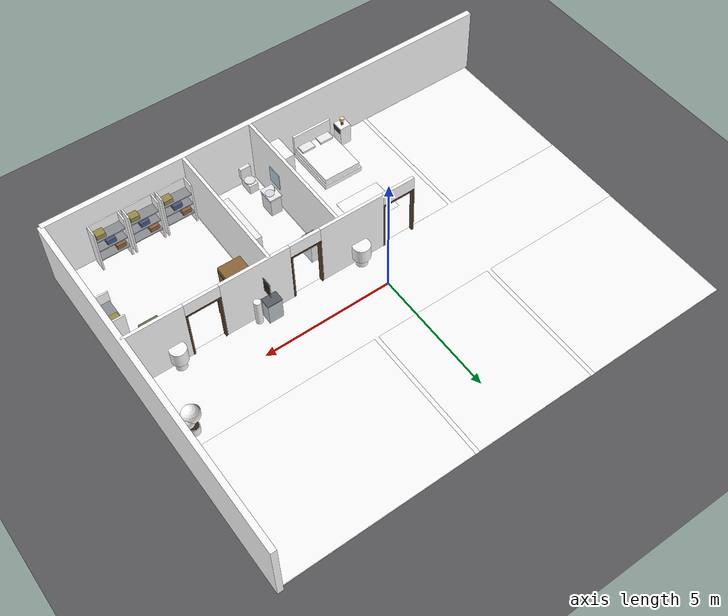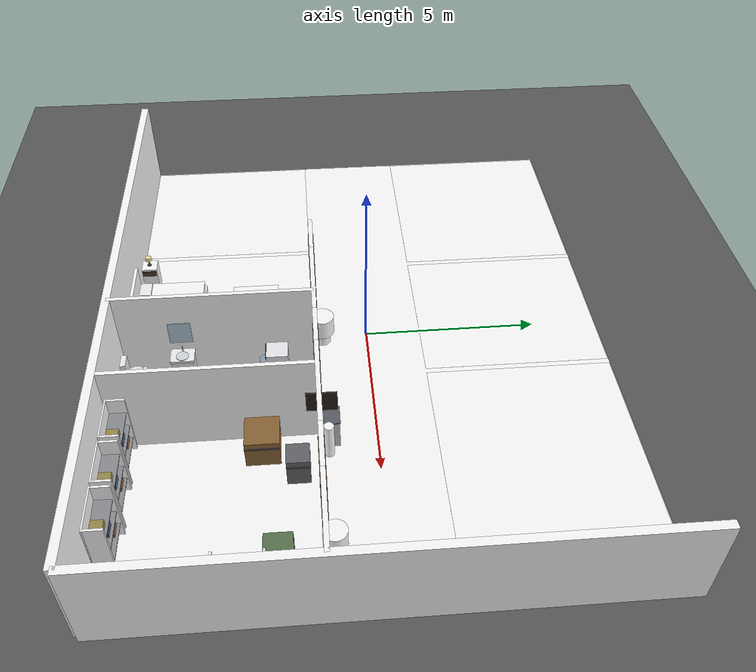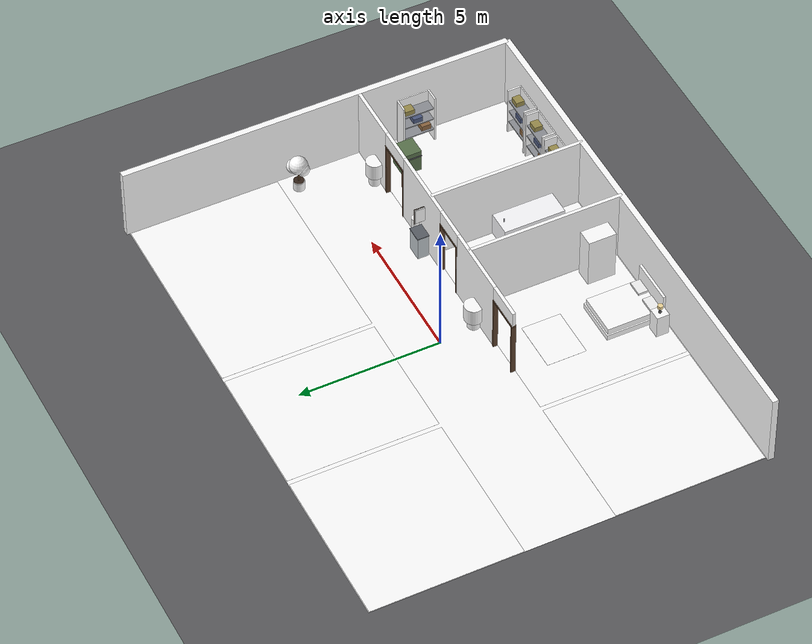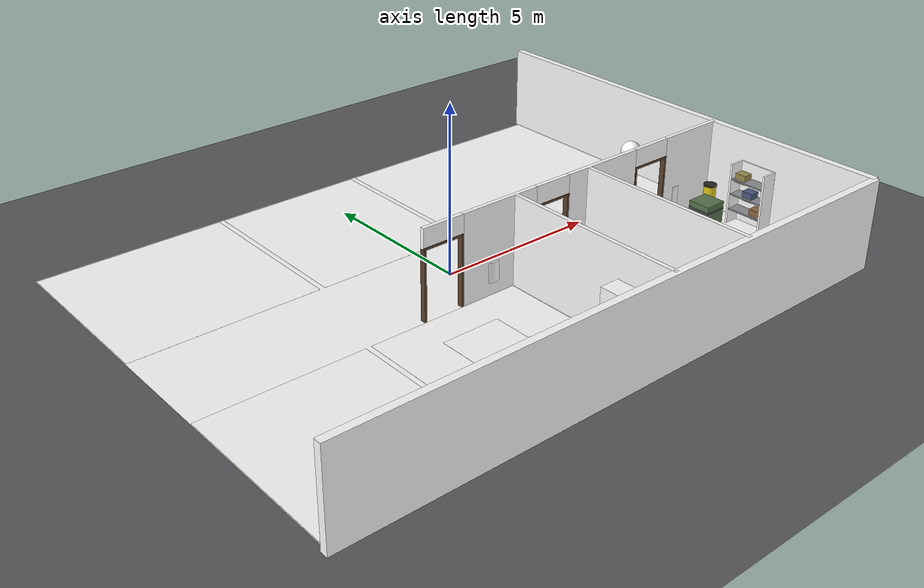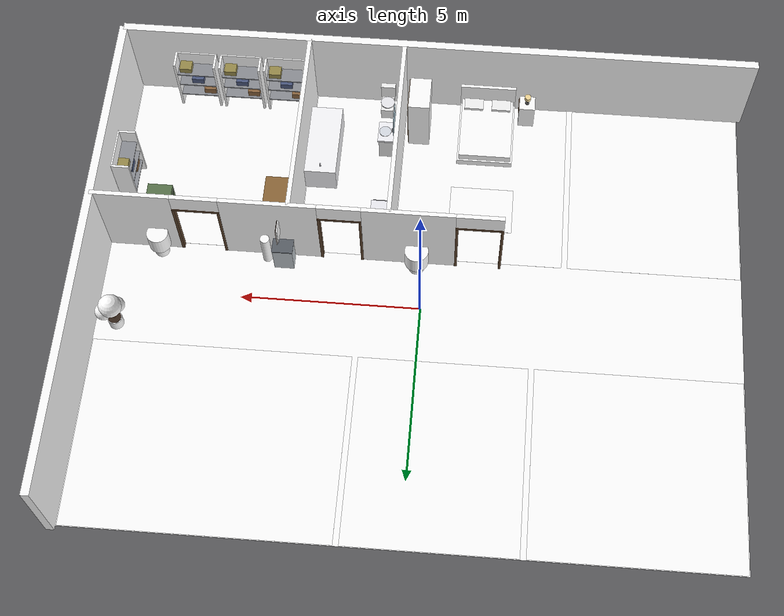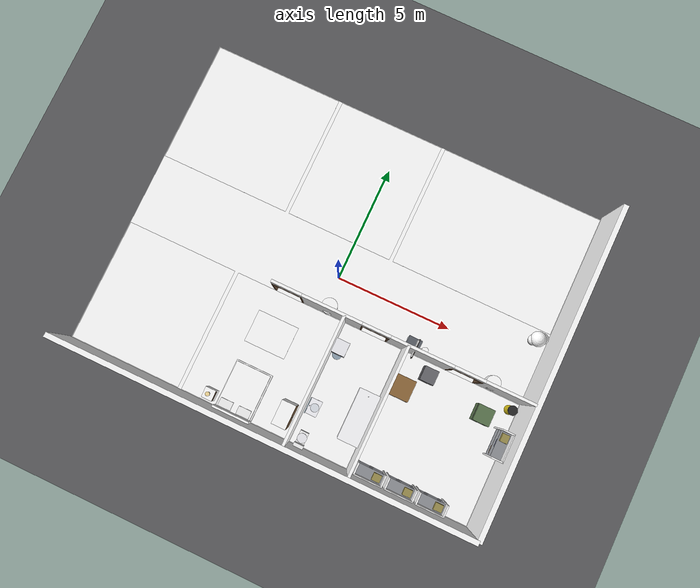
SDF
<sdf version="1.9">
 <world name="dan_house">
  <model name="ground_plane">
   <static>true</static>
   <link name="link">
    <collision name="c"><geometry><plane><normal>0 0 1</normal><size>90 90</size></plane></geometry></collision>
    <visual name="v">
     <geometry><plane><normal>0 0 1</normal><size>90 90</size></plane></geometry>
     <material><diffuse>0.35 0.35 0.36 1</diffuse></material>
    </visual>
   </link>
  </model>
  <model name="floor_main">
   <static>true</static>
   <link name="link">
    <collision name="c">
     <pose>0 0 0.006 0 0 0</pose>
     <geometry><box><size>17.780 13.780 0.012</size></box></geometry>
    </collision>
    <visual name="v">
     <pose>0 0 0.006 0 0 0</pose>
     <geometry><box><size>17.780 13.780 0.012</size></box></geometry>
     <material>
      <diffuse>1 1 1 1</diffuse>
      <pbr>
       <metal>
        <albedo_map>textures/wood_floor.jpg</albedo_map>
        <metalness>0.0</metalness>
        <roughness>0.85</roughness>
       </metal>
      </pbr>
     </material>
    </visual>
   </link>
  </model>
  <model name="floor_tex_living">
   <static>true</static>
   <link name="link">
    <visual name="v">
     <pose>-6.045 4.225 0.0125 0 0 0</pose>
     <geometry><box><size>5.650 5.290 0.001</size></box></geometry>
     <material>
      <diffuse>1 1 1 1</diffuse>
      <pbr>
       <metal>
        <albedo_map>textures/wood_floor.jpg</albedo_map>
        <metalness>0.0</metalness>
        <roughness>0.85</roughness>
       </metal>
      </pbr>
     </material>
    </visual>
   </link>
  </model>
  <model name="floor_tex_kitchen">
   <static>true</static>
   <link name="link">
    <visual name="v">
     <pose>-0.74 4.225 0.0125 0 0 0</pose>
     <geometry><box><size>4.640 5.290 0.001</size></box></geometry>
     <material>
      <diffuse>1 1 1 1</diffuse>
      <pbr>
       <metal><albedo_map>textures/tile.jpg</albedo_map><metalness>0.0</metalness><roughness>0.85</roughness></metal>
      </pbr>
     </material>
    </visual>
   </link>
  </model>
  <model name="floor_tex_study">
   <static>true</static>
   <link name="link">
    <visual name="v">
     <pose>5.305000000000001 4.225 0.0125 0 0 0</pose>
     <geometry><box><size>7.130 5.290 0.001</size></box></geometry>
     <material>
      <diffuse>1 1 1 1</diffuse>
      <pbr>
       <metal>
        <albedo_map>textures/wood_dark.jpg</albedo_map>
        <metalness>0.0</metalness>
        <roughness>0.85</roughness>
       </metal>
      </pbr>
     </material>
    </visual>
   </link>
  </model>
  <model name="floor_tex_bed1">
   <static>true</static>
   <link name="link">
    <visual name="v">
     <pose>-6.445 -4.225 0.0125 0 0 0</pose>
     <geometry><box><size>4.850 5.290 0.001</size></box></geometry>
     <material>
      <diffuse>1 1 1 1</diffuse>
      <pbr>
       <metal>
        <albedo_map>textures/carpet.jpg</albedo_map>
        <metalness>0.0</metalness>
        <roughness>0.85</roughness>
       </metal>
      </pbr>
     </material>
    </visual>
   </link>
  </model>
  <model name="floor_tex_bed2">
   <static>true</static>
   <link name="link">
    <visual name="v">
     <pose>-1.49 -4.225 0.0125 0 0 0</pose>
     <geometry><box><size>4.740 5.290 0.001</size></box></geometry>
     <material>
      <diffuse>1 1 1 1</diffuse>
      <pbr>
       <metal>
        <albedo_map>textures/carpet.jpg</albedo_map>
        <metalness>0.0</metalness>
        <roughness>0.85</roughness>
       </metal>
      </pbr>
     </material>
    </visual>
   </link>
  </model>
  <model name="floor_tex_bath">
   <static>true</static>
   <link name="link">
    <visual name="v">
     <pose>2.31 -4.225 0.0125 0 0 0</pose>
     <geometry><box><size>2.540 5.290 0.001</size></box></geometry>
     <material>
      <diffuse>1 1 1 1</diffuse>
      <pbr>
       <metal><albedo_map>textures/tile.jpg</albedo_map><metalness>0.0</metalness><roughness>0.85</roughness></metal>
      </pbr>
     </material>
    </visual>
   </link>
  </model>
  <model name="floor_tex_store">
   <static>true</static>
   <link name="link">
    <visual name="v">
     <pose>6.305000000000001 -4.225 0.0125 0 0 0</pose>
     <geometry><box><size>5.130 5.290 0.001</size></box></geometry>
     <material>
      <diffuse>1 1 1 1</diffuse>
      <pbr>
       <metal>
        <albedo_map>textures/wood_dark.jpg</albedo_map>
        <metalness>0.0</metalness>
        <roughness>0.85</roughness>
       </metal>
      </pbr>
     </material>
    </visual>
   </link>
  </model>
  <model name="wall_south_0">
   <pose>0.000 -7.0 1.35 0 0 0</pose>
   <static>true</static>
   <link name="link">
    <collision name="c"><geometry><box><size>18.000 0.22 2.7</size></box></geometry></collision>
    <visual name="v">
     <geometry><box><size>18.000 0.22 2.7</size></box></geometry>
     <material>
      <diffuse>1 1 1 1</diffuse>
      <pbr>
       <metal>
        <albedo_map>textures/wallpaper.jpg</albedo_map>
        <metalness>0.0</metalness>
        <roughness>0.85</roughness>
       </metal>
      </pbr>
     </material>
    </visual>
   </link>
  </model>
  <model name="wall_east_0">
   <pose>9.0 0.000 1.35 0 0 0</pose>
   <static>true</static>
   <link name="link">
    <collision name="c"><geometry><box><size>0.22 14.000 2.7</size></box></geometry></collision>
    <visual name="v">
     <geometry><box><size>0.22 14.000 2.7</size></box></geometry>
     <material>
      <diffuse>1 1 1 1</diffuse>
      <pbr>
       <metal>
        <albedo_map>textures/wallpaper.jpg</albedo_map>
        <metalness>0.0</metalness>
        <roughness>0.85</roughness>
       </metal>
      </pbr>
     </material>
    </visual>
   </link>
  </model>
  <model name="wall_corr_south_2">
   <pose>0.425 -1.5 1.35 0 0 0</pose>
   <static>true</static>
   <link name="link">
    <collision name="c"><geometry><box><size>2.550 0.12 2.7</size></box></geometry></collision>
    <visual name="v">
     <geometry><box><size>2.550 0.12 2.7</size></box></geometry>
     <material>
      <diffuse>1 1 1 1</diffuse>
      <pbr>
       <metal>
        <albedo_map>textures/wallpaper.jpg</albedo_map>
        <metalness>0.0</metalness>
        <roughness>0.85</roughness>
       </metal>
      </pbr>
     </material>
    </visual>
   </link>
  </model>
  <model name="wall_corr_south_3">
   <pose>4.225 -1.5 1.35 0 0 0</pose>
   <static>true</static>
   <link name="link">
    <collision name="c"><geometry><box><size>2.650 0.12 2.7</size></box></geometry></collision>
    <visual name="v">
     <geometry><box><size>2.650 0.12 2.7</size></box></geometry>
     <material>
      <diffuse>1 1 1 1</diffuse>
      <pbr>
       <metal>
        <albedo_map>textures/wallpaper.jpg</albedo_map>
        <metalness>0.0</metalness>
        <roughness>0.85</roughness>
       </metal>
      </pbr>
     </material>
    </visual>
   </link>
  </model>
  <model name="wall_corr_south_4">
   <pose>7.925 -1.5 1.35 0 0 0</pose>
   <static>true</static>
   <link name="link">
    <collision name="c"><geometry><box><size>2.150 0.12 2.7</size></box></geometry></collision>
    <visual name="v">
     <geometry><box><size>2.150 0.12 2.7</size></box></geometry>
     <material>
      <diffuse>1 1 1 1</diffuse>
      <pbr>
       <metal>
        <albedo_map>textures/wallpaper.jpg</albedo_map>
        <metalness>0.0</metalness>
        <roughness>0.85</roughness>
       </metal>
      </pbr>
     </material>
    </visual>
   </link>
  </model>
  <model name="wall_corr_south_door_-1.5_p0">
   <pose>-2.115 -1.5 1.075 0 0 0</pose>
   <static>true</static>
   <link name="link">
    <visual name="v">
     <geometry><box><size>0.07 0.160 2.15</size></box></geometry>
     <material><diffuse>0.36 0.26 0.18 1</diffuse></material>
    </visual>
   </link>
  </model>
  <model name="wall_corr_south_door_-1.5_p1">
   <pose>-0.885 -1.5 1.075 0 0 0</pose>
   <static>true</static>
   <link name="link">
    <visual name="v">
     <geometry><box><size>0.07 0.160 2.15</size></box></geometry>
     <material><diffuse>0.36 0.26 0.18 1</diffuse></material>
    </visual>
   </link>
  </model>
  <model name="wall_corr_south_door_-1.5_top">
   <pose>-1.5 -1.5 2.1149999999999998 0 0 0</pose>
   <static>true</static>
   <link name="link">
    <visual name="v">
     <geometry><box><size>1.3 0.160 0.07</size></box></geometry>
     <material><diffuse>0.36 0.26 0.18 1</diffuse></material>
    </visual>
   </link>
  </model>
  <model name="wall_corr_south_door_-1.5_lintel">
   <pose>-1.5 -1.5 2.4000000000000004 0 0 0</pose>
   <static>true</static>
   <link name="link">
    <visual name="v">
     <geometry><box><size>1.3 0.12 0.600</size></box></geometry>
     <material>
      <diffuse>1 1 1 1</diffuse>
      <pbr>
       <metal>
        <albedo_map>textures/wallpaper.jpg</albedo_map>
        <metalness>0.0</metalness>
        <roughness>0.85</roughness>
       </metal>
      </pbr>
     </material>
    </visual>
   </link>
  </model>
  <model name="wall_corr_south_door_2.3_p0">
   <pose>1.7349999999999999 -1.5 1.075 0 0 0</pose>
   <static>true</static>
   <link name="link">
    <visual name="v">
     <geometry><box><size>0.07 0.160 2.15</size></box></geometry>
     <material><diffuse>0.36 0.26 0.18 1</diffuse></material>
    </visual>
   </link>
  </model>
  <model name="wall_corr_south_door_2.3_p1">
   <pose>2.8649999999999998 -1.5 1.075 0 0 0</pose>
   <static>true</static>
   <link name="link">
    <visual name="v">
     <geometry><box><size>0.07 0.160 2.15</size></box></geometry>
     <material><diffuse>0.36 0.26 0.18 1</diffuse></material>
    </visual>
   </link>
  </model>
  <model name="wall_corr_south_door_2.3_top">
   <pose>2.3 -1.5 2.1149999999999998 0 0 0</pose>
   <static>true</static>
   <link name="link">
    <visual name="v">
     <geometry><box><size>1.2 0.160 0.07</size></box></geometry>
     <material><diffuse>0.36 0.26 0.18 1</diffuse></material>
    </visual>
   </link>
  </model>
  <model name="wall_corr_south_door_2.3_lintel">
   <pose>2.3 -1.5 2.4000000000000004 0 0 0</pose>
   <static>true</static>
   <link name="link">
    <visual name="v">
     <geometry><box><size>1.2 0.12 0.600</size></box></geometry>
     <material>
      <diffuse>1 1 1 1</diffuse>
      <pbr>
       <metal>
        <albedo_map>textures/wallpaper.jpg</albedo_map>
        <metalness>0.0</metalness>
        <roughness>0.85</roughness>
       </metal>
      </pbr>
     </material>
    </visual>
   </link>
  </model>
  <model name="wall_corr_south_door_6.2_p0">
   <pose>5.585 -1.5 1.075 0 0 0</pose>
   <static>true</static>
   <link name="link">
    <visual name="v">
     <geometry><box><size>0.07 0.160 2.15</size></box></geometry>
     <material><diffuse>0.36 0.26 0.18 1</diffuse></material>
    </visual>
   </link>
  </model>
  <model name="wall_corr_south_door_6.2_p1">
   <pose>6.815 -1.5 1.075 0 0 0</pose>
   <static>true</static>
   <link name="link">
    <visual name="v">
     <geometry><box><size>0.07 0.160 2.15</size></box></geometry>
     <material><diffuse>0.36 0.26 0.18 1</diffuse></material>
    </visual>
   </link>
  </model>
  <model name="wall_corr_south_door_6.2_top">
   <pose>6.2 -1.5 2.1149999999999998 0 0 0</pose>
   <static>true</static>
   <link name="link">
    <visual name="v">
     <geometry><box><size>1.3 0.160 0.07</size></box></geometry>
     <material><diffuse>0.36 0.26 0.18 1</diffuse></material>
    </visual>
   </link>
  </model>
  <model name="wall_corr_south_door_6.2_lintel">
   <pose>6.2 -1.5 2.4000000000000004 0 0 0</pose>
   <static>true</static>
   <link name="link">
    <visual name="v">
     <geometry><box><size>1.3 0.12 0.600</size></box></geometry>
     <material>
      <diffuse>1 1 1 1</diffuse>
      <pbr>
       <metal>
        <albedo_map>textures/wallpaper.jpg</albedo_map>
        <metalness>0.0</metalness>
        <roughness>0.85</roughness>
       </metal>
      </pbr>
     </material>
    </visual>
   </link>
  </model>
  <model name="wall_bed2_bath_0">
   <pose>0.96 -4.250 1.35 0 0 0</pose>
   <static>true</static>
   <link name="link">
    <collision name="c"><geometry><box><size>0.12 5.500 2.7</size></box></geometry></collision>
    <visual name="v">
     <geometry><box><size>0.12 5.500 2.7</size></box></geometry>
     <material>
      <diffuse>1 1 1 1</diffuse>
      <pbr>
       <metal>
        <albedo_map>textures/wallpaper.jpg</albedo_map>
        <metalness>0.0</metalness>
        <roughness>0.85</roughness>
       </metal>
      </pbr>
     </material>
    </visual>
   </link>
  </model>
  <model name="wall_bath_store_0">
   <pose>3.66 -4.250 1.35 0 0 0</pose>
   <static>true</static>
   <link name="link">
    <collision name="c"><geometry><box><size>0.12 5.500 2.7</size></box></geometry></collision>
    <visual name="v">
     <geometry><box><size>0.12 5.500 2.7</size></box></geometry>
     <material>
      <diffuse>1 1 1 1</diffuse>
      <pbr>
       <metal>
        <albedo_map>textures/wallpaper.jpg</albedo_map>
        <metalness>0.0</metalness>
        <roughness>0.85</roughness>
       </metal>
      </pbr>
     </material>
    </visual>
   </link>
  </model>
  <model name="window_s3">
   <pose>-2.0 -6.95 1.6 0 0 0</pose>
   <static>true</static>
   <link name="link">
    <visual name="pane">
     <geometry><box><size>1.62 0.06 1.2</size></box></geometry>
     <material><diffuse>0.55 0.72 0.9 1</diffuse><emissive>0.14 0.2 0.3</emissive></material>
    </visual>
    <visual name="ft">
     <pose>0 0 0.65 0 0 0</pose>
     <geometry><box><size>1.80 0.1 0.08</size></box></geometry>
     <material><diffuse>0.95 0.95 0.95 1</diffuse></material>
    </visual>
    <visual name="fb">
     <pose>0 0 -0.65 0 0 0</pose>
     <geometry><box><size>1.80 0.1 0.08</size></box></geometry>
     <material><diffuse>0.95 0.95 0.95 1</diffuse></material>
    </visual>
    <visual name="fl">
     <pose>-0.90 0 0 0 0 0</pose>
     <geometry><box><size>0.1 0.1 1.2</size></box></geometry>
     <material><diffuse>0.95 0.95 0.95 1</diffuse></material>
    </visual>
    <visual name="fr">
     <pose>0.90 0 0 0 0 0</pose>
     <geometry><box><size>0.1 0.1 1.2</size></box></geometry>
     <material><diffuse>0.95 0.95 0.95 1</diffuse></material>
    </visual>
   </link>
  </model>
  <model name="window_s4">
   <pose>1.5 -6.95 1.6 0 0 0</pose>
   <static>true</static>
   <link name="link">
    <visual name="pane">
     <geometry><box><size>1.62 0.06 1.2</size></box></geometry>
     <material><diffuse>0.55 0.72 0.9 1</diffuse><emissive>0.14 0.2 0.3</emissive></material>
    </visual>
    <visual name="ft">
     <pose>0 0 0.65 0 0 0</pose>
     <geometry><box><size>1.80 0.1 0.08</size></box></geometry>
     <material><diffuse>0.95 0.95 0.95 1</diffuse></material>
    </visual>
    <visual name="fb">
     <pose>0 0 -0.65 0 0 0</pose>
     <geometry><box><size>1.80 0.1 0.08</size></box></geometry>
     <material><diffuse>0.95 0.95 0.95 1</diffuse></material>
    </visual>
    <visual name="fl">
     <pose>-0.90 0 0 0 0 0</pose>
     <geometry><box><size>0.1 0.1 1.2</size></box></geometry>
     <material><diffuse>0.95 0.95 0.95 1</diffuse></material>
    </visual>
    <visual name="fr">
     <pose>0.90 0 0 0 0 0</pose>
     <geometry><box><size>0.1 0.1 1.2</size></box></geometry>
     <material><diffuse>0.95 0.95 0.95 1</diffuse></material>
    </visual>
   </link>
  </model>
  <model name="window_s5">
   <pose>7.0 -6.95 1.6 0 0 0</pose>
   <static>true</static>
   <link name="link">
    <visual name="pane">
     <geometry><box><size>1.62 0.06 1.2</size></box></geometry>
     <material><diffuse>0.55 0.72 0.9 1</diffuse><emissive>0.14 0.2 0.3</emissive></material>
    </visual>
    <visual name="ft">
     <pose>0 0 0.65 0 0 0</pose>
     <geometry><box><size>1.80 0.1 0.08</size></box></geometry>
     <material><diffuse>0.95 0.95 0.95 1</diffuse></material>
    </visual>
    <visual name="fb">
     <pose>0 0 -0.65 0 0 0</pose>
     <geometry><box><size>1.80 0.1 0.08</size></box></geometry>
     <material><diffuse>0.95 0.95 0.95 1</diffuse></material>
    </visual>
    <visual name="fl">
     <pose>-0.90 0 0 0 0 0</pose>
     <geometry><box><size>0.1 0.1 1.2</size></box></geometry>
     <material><diffuse>0.95 0.95 0.95 1</diffuse></material>
    </visual>
    <visual name="fr">
     <pose>0.90 0 0 0 0 0</pose>
     <geometry><box><size>0.1 0.1 1.2</size></box></geometry>
     <material><diffuse>0.95 0.95 0.95 1</diffuse></material>
    </visual>
   </link>
  </model>
  <model name="painting_2">
   <pose>4.0 -1.44 1.6 0 0 3.1416</pose>
   <static>true</static>
   <link name="link">
    <visual name="frame">
     <geometry><box><size>0.02 0.8 0.65</size></box></geometry>
     <material><diffuse>0.15 0.12 0.1 1</diffuse></material>
    </visual>
    <visual name="canvas">
     <pose>0.025 0 0 0 0 0</pose>
     <geometry><box><size>0.03 0.72 0.57</size></box></geometry>
     <material>
      <diffuse>1 1 1 1</diffuse>
      <pbr>
       <metal>
        <albedo_map>textures/painting.jpg</albedo_map>
        <metalness>0.0</metalness>
        <roughness>0.85</roughness>
       </metal>
      </pbr>
     </material>
    </visual>
   </link>
  </model>
  <model name="bed_2">
   <pose>-1.5 -5.85 0 0 0 0.0</pose>
   <static>true</static>
   <link name="link">
    <collision name="c">
     <pose>0 0 0.225 0 0 0</pose>
     <geometry><box><size>1.5 2.0 0.45</size></box></geometry>
    </collision>
    <visual name="frame">
     <pose>0 0 0.11 0 0 0</pose>
     <geometry><box><size>1.6 2.1 0.22</size></box></geometry>
     <material>
      <diffuse>1 1 1 1</diffuse>
      <pbr>
       <metal>
        <albedo_map>textures/wood_dark.jpg</albedo_map>
        <metalness>0.0</metalness>
        <roughness>0.85</roughness>
       </metal>
      </pbr>
     </material>
    </visual>
    <visual name="mattress">
     <pose>0 0 0.33 0 0 0</pose>
     <geometry><box><size>1.5 2.0 0.22</size></box></geometry>
     <material>
      <diffuse>1 1 1 1</diffuse>
      <pbr>
       <metal>
        <albedo_map>textures/bedding.jpg</albedo_map>
        <metalness>0.0</metalness>
        <roughness>0.85</roughness>
       </metal>
      </pbr>
     </material>
    </visual>
    <visual name="head">
     <pose>0 -1.0 0.6 0 0 0</pose>
     <geometry><box><size>1.6 0.1 0.9</size></box></geometry>
     <material>
      <diffuse>1 1 1 1</diffuse>
      <pbr>
       <metal>
        <albedo_map>textures/wood_dark.jpg</albedo_map>
        <metalness>0.0</metalness>
        <roughness>0.85</roughness>
       </metal>
      </pbr>
     </material>
    </visual>
    <visual name="p1">
     <pose>-0.4 -0.75 0.48 0 0 0</pose>
     <geometry><box><size>0.55 0.35 0.09</size></box></geometry>
     <material><diffuse>0.95 0.95 0.95 1</diffuse></material>
    </visual>
    <visual name="p2">
     <pose>0.4 -0.75 0.48 0 0 0</pose>
     <geometry><box><size>0.55 0.35 0.09</size></box></geometry>
     <material><diffuse>0.95 0.95 0.95 1</diffuse></material>
    </visual>
   </link>
  </model>
  <model name="nightstand_2">
   <pose>-2.65 -6.5 0 0 0 0.0</pose>
   <static>true</static>
   <link name="link">
    <collision name="c">
     <pose>0 0 0.430 0 0 0</pose>
     <geometry><box><size>0.45 0.45 0.860</size></box></geometry>
    </collision>
    <visual name="body">
     <pose>0 0 0.430 0 0 0</pose>
     <geometry><box><size>0.45 0.45 0.860</size></box></geometry>
     <material>
      <diffuse>1 1 1 1</diffuse>
      <pbr>
       <metal>
        <albedo_map>textures/wood_dark.jpg</albedo_map>
        <metalness>0.0</metalness>
        <roughness>0.85</roughness>
       </metal>
      </pbr>
     </material>
    </visual>
    <visual name="drawer">
     <pose>0.235 0 0.710 0 0 0</pose>
     <geometry><box><size>0.02 0.4 0.18</size></box></geometry>
     <material><diffuse>0.3 0.22 0.15 1</diffuse></material>
    </visual>
    <visual name="lb">
     <pose>0 0 0.870 0 0 0</pose>
     <geometry><cylinder><radius>0.06</radius><length>0.02</length></cylinder></geometry>
     <material><diffuse>0.3 0.3 0.3 1</diffuse></material>
    </visual>
    <visual name="lp">
     <pose>0 0 0.970 0 0 0</pose>
     <geometry><cylinder><radius>0.015</radius><length>0.18</length></cylinder></geometry>
     <material><diffuse>0.3 0.3 0.3 1</diffuse></material>
    </visual>
    <visual name="ls">
     <pose>0 0 1.110 0 0 0</pose>
     <geometry><cylinder><radius>0.09</radius><length>0.12</length></cylinder></geometry>
     <material><diffuse>0.95 0.85 0.6 1</diffuse><emissive>0.55 0.45 0.28</emissive></material>
    </visual>
   </link>
  </model>
  <model name="wardrobe_2">
   <pose>0.45 -5.9 0 0 0 1.5708</pose>
   <static>true</static>
   <link name="link">
    <collision name="c">
     <pose>0 0 0.95 0 0 0</pose>
     <geometry><box><size>1.0 0.6 1.9</size></box></geometry>
    </collision>
    <visual name="body">
     <pose>0 0 0.95 0 0 0</pose>
     <geometry><box><size>1.0 0.6 1.9</size></box></geometry>
     <material>
      <diffuse>1 1 1 1</diffuse>
      <pbr>
       <metal>
        <albedo_map>textures/wood_dark.jpg</albedo_map>
        <metalness>0.0</metalness>
        <roughness>0.85</roughness>
       </metal>
      </pbr>
     </material>
    </visual>
    <visual name="d1">
     <pose>-0.245 -0.31 0.95 0 0 0</pose>
     <geometry><box><size>0.48 0.02 1.8</size></box></geometry>
     <material><diffuse>0.42 0.32 0.22 1</diffuse></material>
    </visual>
    <visual name="d2">
     <pose>0.245 -0.31 0.95 0 0 0</pose>
     <geometry><box><size>0.48 0.02 1.8</size></box></geometry>
     <material><diffuse>0.45 0.35 0.25 1</diffuse></material>
    </visual>
    <visual name="h1">
     <pose>-0.05 -0.33 1.0 0 0 0</pose>
     <geometry><box><size>0.03 0.03 0.12</size></box></geometry>
     <material><diffuse>0.7 0.7 0.72 1</diffuse></material>
    </visual>
    <visual name="h2">
     <pose>0.05 -0.33 1.0 0 0 0</pose>
     <geometry><box><size>0.03 0.03 0.12</size></box></geometry>
     <material><diffuse>0.7 0.7 0.72 1</diffuse></material>
    </visual>
   </link>
  </model>
  <model name="rug_3">
   <pose>-1.5 -3.3 0.0125 0 0 0.0</pose>
   <static>true</static>
   <link name="link">
    <visual name="v">
     <geometry><box><size>1.8 1.4 0.008</size></box></geometry>
     <material>
      <diffuse>1 1 1 1</diffuse>
      <pbr>
       <metal><albedo_map>textures/rug.jpg</albedo_map><metalness>0.0</metalness><roughness>0.85</roughness></metal>
      </pbr>
     </material>
    </visual>
   </link>
  </model>
  <model name="bathtub">
   <pose>3.15 -4.8 0 0 0 0.0</pose>
   <static>true</static>
   <link name="link">
    <collision name="c">
     <pose>0 0 0.430 0 0 0</pose>
     <geometry><box><size>0.9 2.2 0.860</size></box></geometry>
    </collision>
    <visual name="body">
     <pose>0 0 0.430 0 0 0</pose>
     <geometry><box><size>0.9 2.2 0.860</size></box></geometry>
     <material><diffuse>0.97 0.97 0.98 1</diffuse></material>
    </visual>
    <visual name="inner">
     <pose>0 0 0.800 0 0 0</pose>
     <geometry><box><size>0.74 1.90 0.06</size></box></geometry>
     <material><diffuse>0.82 0.86 0.9 1</diffuse></material>
    </visual>
    <visual name="tap">
     <pose>0 0.90 0.920 0 0 0</pose>
     <geometry><cylinder><radius>0.02</radius><length>0.14</length></cylinder></geometry>
     <material><diffuse>0.75 0.75 0.78 1</diffuse></material>
    </visual>
   </link>
  </model>
  <model name="toilet">
   <pose>1.45 -6.4 0 0 0 3.1416</pose>
   <static>true</static>
   <link name="link">
    <collision name="bowl_c">
     <pose>0 0.12 0.2 0 0 0</pose>
     <geometry><box><size>0.4 0.6 0.4</size></box></geometry>
    </collision>
    <visual name="base">
     <pose>0 0.12 0.2 0 0 0</pose>
     <geometry><box><size>0.36 0.55 0.38</size></box></geometry>
     <material><diffuse>0.95 0.95 0.95 1</diffuse></material>
    </visual>
    <visual name="seat">
     <pose>0 0.12 0.4 0 0 0</pose>
     <geometry><cylinder><radius>0.2</radius><length>0.06</length></cylinder></geometry>
     <material><diffuse>0.92 0.92 0.94 1</diffuse></material>
    </visual>
    <collision name="tank_c">
     <pose>0 0.44 0.630 0 0 0</pose>
     <geometry><box><size>0.42 0.2 0.460</size></box></geometry>
    </collision>
    <visual name="tank">
     <pose>0 0.44 0.630 0 0 0</pose>
     <geometry><box><size>0.42 0.2 0.460</size></box></geometry>
     <material><diffuse>0.95 0.95 0.95 1</diffuse></material>
    </visual>
   </link>
  </model>
  <model name="sink_basin">
   <pose>1.35 -5.2 0 0 0 1.5708</pose>
   <static>true</static>
   <link name="link">
    <collision name="c">
     <pose>0 0 0.42 0 0 0</pose>
     <geometry><box><size>0.62 0.46 0.84</size></box></geometry>
    </collision>
    <visual name="cab">
     <pose>0 0 0.4 0 0 0</pose>
     <geometry><box><size>0.6 0.44 0.78</size></box></geometry>
     <material><diffuse>0.9 0.9 0.9 1</diffuse></material>
    </visual>
    <visual name="top">
     <pose>0 0 0.83 0 0 0</pose>
     <geometry><box><size>0.66 0.5 0.06</size></box></geometry>
     <material><diffuse>0.95 0.95 0.97 1</diffuse></material>
    </visual>
    <visual name="basin">
     <pose>0 -0.05 0.86 0 0 0</pose>
     <geometry><cylinder><radius>0.17</radius><length>0.04</length></cylinder></geometry>
     <material><diffuse>0.85 0.87 0.9 1</diffuse></material>
    </visual>
    <visual name="tap">
     <pose>0 0.16 0.95 0 0 0</pose>
     <geometry><cylinder><radius>0.015</radius><length>0.18</length></cylinder></geometry>
     <material><diffuse>0.75 0.75 0.78 1</diffuse></material>
    </visual>
    <visual name="mirror">
     <pose>0 0.22 1.5 0 0 0</pose>
     <geometry><box><size>0.62 0.02 0.7</size></box></geometry>
     <material><diffuse>0.7 0.8 0.85 1</diffuse><emissive>0.2 0.22 0.24</emissive></material>
    </visual>
   </link>
  </model>
  <model name="washer">
   <pose>1.3 -2.6 0 0 0 0.0</pose>
   <static>true</static>
   <link name="link">
    <collision name="c">
     <pose>0 0 0.42 0 0 0</pose>
     <geometry><box><size>0.6 0.6 0.84</size></box></geometry>
    </collision>
    <visual name="body">
     <pose>0 0 0.42 0 0 0</pose>
     <geometry><box><size>0.6 0.6 0.84</size></box></geometry>
     <material><diffuse>0.93 0.93 0.95 1</diffuse></material>
    </visual>
    <visual name="door">
     <pose>0 -0.31 0.45 0 0 0</pose>
     <geometry><cylinder><radius>0.2</radius><length>0.04</length></cylinder></geometry>
     <material><diffuse>0.55 0.62 0.68 1</diffuse></material>
    </visual>
    <visual name="panel">
     <pose>0 -0.31 0.78 0 0 0</pose>
     <geometry><box><size>0.5 0.03 0.1</size></box></geometry>
     <material><diffuse>0.2 0.2 0.22 1</diffuse></material>
    </visual>
   </link>
  </model>
  <model name="shelf_unit">
   <pose>4.4 -6.55 0 0 0 0.0</pose>
   <static>true</static>
   <link name="link">
    <collision name="c">
     <pose>0 0 0.95 0 0 0</pose>
     <geometry><box><size>1.2 0.5 1.9</size></box></geometry>
    </collision>
    <visual name="back">
     <pose>0 -0.230 0.95 0 0 0</pose>
     <geometry><box><size>1.2 0.04 1.9</size></box></geometry>
     <material>
      <diffuse>1 1 1 1</diffuse>
      <pbr>
       <metal>
        <albedo_map>textures/metal.jpg</albedo_map>
        <metalness>0.0</metalness>
        <roughness>0.85</roughness>
       </metal>
      </pbr>
     </material>
    </visual>
    <visual name="sl">
     <pose>-0.570 0 0.95 0 0 0</pose>
     <geometry><box><size>0.06 0.5 1.9</size></box></geometry>
     <material>
      <diffuse>1 1 1 1</diffuse>
      <pbr>
       <metal>
        <albedo_map>textures/metal.jpg</albedo_map>
        <metalness>0.0</metalness>
        <roughness>0.85</roughness>
       </metal>
      </pbr>
     </material>
    </visual>
    <visual name="sr">
     <pose>0.570 0 0.95 0 0 0</pose>
     <geometry><box><size>0.06 0.5 1.9</size></box></geometry>
     <material>
      <diffuse>1 1 1 1</diffuse>
      <pbr>
       <metal>
        <albedo_map>textures/metal.jpg</albedo_map>
        <metalness>0.0</metalness>
        <roughness>0.85</roughness>
       </metal>
      </pbr>
     </material>
    </visual>
    <visual name="shelf1">
     <pose>0 0 0.475 0 0 0</pose>
     <geometry><box><size>1.10 0.44 0.04</size></box></geometry>
     <material><diffuse>0.55 0.56 0.58 1</diffuse></material>
    </visual>
    <visual name="shelf2">
     <pose>0 0 0.950 0 0 0</pose>
     <geometry><box><size>1.10 0.44 0.04</size></box></geometry>
     <material><diffuse>0.55 0.56 0.58 1</diffuse></material>
    </visual>
    <visual name="shelf3">
     <pose>0 0 1.425 0 0 0</pose>
     <geometry><box><size>1.10 0.44 0.04</size></box></geometry>
     <material><diffuse>0.55 0.56 0.58 1</diffuse></material>
    </visual>
    <visual name="box1">
     <pose>-0.30 0 0.55 0 0 0</pose>
     <geometry><box><size>0.34 0.3 0.28</size></box></geometry>
     <material><diffuse>0.55 0.4 0.25 1</diffuse></material>
    </visual>
    <visual name="box2">
     <pose>0.00 0 1.02 0 0 0</pose>
     <geometry><box><size>0.34 0.3 0.28</size></box></geometry>
     <material><diffuse>0.3 0.35 0.5 1</diffuse></material>
    </visual>
    <visual name="box3">
     <pose>0.30 0 1.49 0 0 0</pose>
     <geometry><box><size>0.34 0.3 0.28</size></box></geometry>
     <material><diffuse>0.6 0.55 0.3 1</diffuse></material>
    </visual>
   </link>
  </model>
  <model name="shelf_unit_2">
   <pose>5.7 -6.55 0 0 0 0.0</pose>
   <static>true</static>
   <link name="link">
    <collision name="c">
     <pose>0 0 0.95 0 0 0</pose>
     <geometry><box><size>1.2 0.5 1.9</size></box></geometry>
    </collision>
    <visual name="back">
     <pose>0 -0.230 0.95 0 0 0</pose>
     <geometry><box><size>1.2 0.04 1.9</size></box></geometry>
     <material>
      <diffuse>1 1 1 1</diffuse>
      <pbr>
       <metal>
        <albedo_map>textures/metal.jpg</albedo_map>
        <metalness>0.0</metalness>
        <roughness>0.85</roughness>
       </metal>
      </pbr>
     </material>
    </visual>
    <visual name="sl">
     <pose>-0.570 0 0.95 0 0 0</pose>
     <geometry><box><size>0.06 0.5 1.9</size></box></geometry>
     <material>
      <diffuse>1 1 1 1</diffuse>
      <pbr>
       <metal>
        <albedo_map>textures/metal.jpg</albedo_map>
        <metalness>0.0</metalness>
        <roughness>0.85</roughness>
       </metal>
      </pbr>
     </material>
    </visual>
    <visual name="sr">
     <pose>0.570 0 0.95 0 0 0</pose>
     <geometry><box><size>0.06 0.5 1.9</size></box></geometry>
     <material>
      <diffuse>1 1 1 1</diffuse>
      <pbr>
       <metal>
        <albedo_map>textures/metal.jpg</albedo_map>
        <metalness>0.0</metalness>
        <roughness>0.85</roughness>
       </metal>
      </pbr>
     </material>
    </visual>
    <visual name="shelf1">
     <pose>0 0 0.475 0 0 0</pose>
     <geometry><box><size>1.10 0.44 0.04</size></box></geometry>
     <material><diffuse>0.55 0.56 0.58 1</diffuse></material>
    </visual>
    <visual name="shelf2">
     <pose>0 0 0.950 0 0 0</pose>
     <geometry><box><size>1.10 0.44 0.04</size></box></geometry>
     <material><diffuse>0.55 0.56 0.58 1</diffuse></material>
    </visual>
    <visual name="shelf3">
     <pose>0 0 1.425 0 0 0</pose>
     <geometry><box><size>1.10 0.44 0.04</size></box></geometry>
     <material><diffuse>0.55 0.56 0.58 1</diffuse></material>
    </visual>
    <visual name="box1">
     <pose>-0.30 0 0.55 0 0 0</pose>
     <geometry><box><size>0.34 0.3 0.28</size></box></geometry>
     <material><diffuse>0.55 0.4 0.25 1</diffuse></material>
    </visual>
    <visual name="box2">
     <pose>0.00 0 1.02 0 0 0</pose>
     <geometry><box><size>0.34 0.3 0.28</size></box></geometry>
     <material><diffuse>0.3 0.35 0.5 1</diffuse></material>
    </visual>
    <visual name="box3">
     <pose>0.30 0 1.49 0 0 0</pose>
     <geometry><box><size>0.34 0.3 0.28</size></box></geometry>
     <material><diffuse>0.6 0.55 0.3 1</diffuse></material>
    </visual>
   </link>
  </model>
  <model name="shelf_unit_3">
   <pose>7.0 -6.55 0 0 0 0.0</pose>
   <static>true</static>
   <link name="link">
    <collision name="c">
     <pose>0 0 0.95 0 0 0</pose>
     <geometry><box><size>1.2 0.5 1.9</size></box></geometry>
    </collision>
    <visual name="back">
     <pose>0 -0.230 0.95 0 0 0</pose>
     <geometry><box><size>1.2 0.04 1.9</size></box></geometry>
     <material>
      <diffuse>1 1 1 1</diffuse>
      <pbr>
       <metal>
        <albedo_map>textures/metal.jpg</albedo_map>
        <metalness>0.0</metalness>
        <roughness>0.85</roughness>
       </metal>
      </pbr>
     </material>
    </visual>
    <visual name="sl">
     <pose>-0.570 0 0.95 0 0 0</pose>
     <geometry><box><size>0.06 0.5 1.9</size></box></geometry>
     <material>
      <diffuse>1 1 1 1</diffuse>
      <pbr>
       <metal>
        <albedo_map>textures/metal.jpg</albedo_map>
        <metalness>0.0</metalness>
        <roughness>0.85</roughness>
       </metal>
      </pbr>
     </material>
    </visual>
    <visual name="sr">
     <pose>0.570 0 0.95 0 0 0</pose>
     <geometry><box><size>0.06 0.5 1.9</size></box></geometry>
     <material>
      <diffuse>1 1 1 1</diffuse>
      <pbr>
       <metal>
        <albedo_map>textures/metal.jpg</albedo_map>
        <metalness>0.0</metalness>
        <roughness>0.85</roughness>
       </metal>
      </pbr>
     </material>
    </visual>
    <visual name="shelf1">
     <pose>0 0 0.475 0 0 0</pose>
     <geometry><box><size>1.10 0.44 0.04</size></box></geometry>
     <material><diffuse>0.55 0.56 0.58 1</diffuse></material>
    </visual>
    <visual name="shelf2">
     <pose>0 0 0.950 0 0 0</pose>
     <geometry><box><size>1.10 0.44 0.04</size></box></geometry>
     <material><diffuse>0.55 0.56 0.58 1</diffuse></material>
    </visual>
    <visual name="shelf3">
     <pose>0 0 1.425 0 0 0</pose>
     <geometry><box><size>1.10 0.44 0.04</size></box></geometry>
     <material><diffuse>0.55 0.56 0.58 1</diffuse></material>
    </visual>
    <visual name="box1">
     <pose>-0.30 0 0.55 0 0 0</pose>
     <geometry><box><size>0.34 0.3 0.28</size></box></geometry>
     <material><diffuse>0.55 0.4 0.25 1</diffuse></material>
    </visual>
    <visual name="box2">
     <pose>0.00 0 1.02 0 0 0</pose>
     <geometry><box><size>0.34 0.3 0.28</size></box></geometry>
     <material><diffuse>0.3 0.35 0.5 1</diffuse></material>
    </visual>
    <visual name="box3">
     <pose>0.30 0 1.49 0 0 0</pose>
     <geometry><box><size>0.34 0.3 0.28</size></box></geometry>
     <material><diffuse>0.6 0.55 0.3 1</diffuse></material>
    </visual>
   </link>
  </model>
  <model name="shelf_east">
   <pose>8.55 -3.4 0 0 0 1.5708</pose>
   <static>true</static>
   <link name="link">
    <collision name="c">
     <pose>0 0 0.95 0 0 0</pose>
     <geometry><box><size>1.2 0.5 1.9</size></box></geometry>
    </collision>
    <visual name="back">
     <pose>0 -0.230 0.95 0 0 0</pose>
     <geometry><box><size>1.2 0.04 1.9</size></box></geometry>
     <material>
      <diffuse>1 1 1 1</diffuse>
      <pbr>
       <metal>
        <albedo_map>textures/metal.jpg</albedo_map>
        <metalness>0.0</metalness>
        <roughness>0.85</roughness>
       </metal>
      </pbr>
     </material>
    </visual>
    <visual name="sl">
     <pose>-0.570 0 0.95 0 0 0</pose>
     <geometry><box><size>0.06 0.5 1.9</size></box></geometry>
     <material>
      <diffuse>1 1 1 1</diffuse>
      <pbr>
       <metal>
        <albedo_map>textures/metal.jpg</albedo_map>
        <metalness>0.0</metalness>
        <roughness>0.85</roughness>
       </metal>
      </pbr>
     </material>
    </visual>
    <visual name="sr">
     <pose>0.570 0 0.95 0 0 0</pose>
     <geometry><box><size>0.06 0.5 1.9</size></box></geometry>
     <material>
      <diffuse>1 1 1 1</diffuse>
      <pbr>
       <metal>
        <albedo_map>textures/metal.jpg</albedo_map>
        <metalness>0.0</metalness>
        <roughness>0.85</roughness>
       </metal>
      </pbr>
     </material>
    </visual>
    <visual name="shelf1">
     <pose>0 0 0.475 0 0 0</pose>
     <geometry><box><size>1.10 0.44 0.04</size></box></geometry>
     <material><diffuse>0.55 0.56 0.58 1</diffuse></material>
    </visual>
    <visual name="shelf2">
     <pose>0 0 0.950 0 0 0</pose>
     <geometry><box><size>1.10 0.44 0.04</size></box></geometry>
     <material><diffuse>0.55 0.56 0.58 1</diffuse></material>
    </visual>
    <visual name="shelf3">
     <pose>0 0 1.425 0 0 0</pose>
     <geometry><box><size>1.10 0.44 0.04</size></box></geometry>
     <material><diffuse>0.55 0.56 0.58 1</diffuse></material>
    </visual>
    <visual name="box1">
     <pose>-0.30 0 0.55 0 0 0</pose>
     <geometry><box><size>0.34 0.3 0.28</size></box></geometry>
     <material><diffuse>0.55 0.4 0.25 1</diffuse></material>
    </visual>
    <visual name="box2">
     <pose>0.00 0 1.02 0 0 0</pose>
     <geometry><box><size>0.34 0.3 0.28</size></box></geometry>
     <material><diffuse>0.3 0.35 0.5 1</diffuse></material>
    </visual>
    <visual name="box3">
     <pose>0.30 0 1.49 0 0 0</pose>
     <geometry><box><size>0.34 0.3 0.28</size></box></geometry>
     <material><diffuse>0.6 0.55 0.3 1</diffuse></material>
    </visual>
   </link>
  </model>
  <model name="crate">
   <pose>4.2 -3.0 0 0 0 0</pose>
   <static>true</static>
   <link name="link">
    <collision name="c">
     <pose>0 0 0.425 0 0 0</pose>
     <geometry><box><size>0.9 0.9 0.85</size></box></geometry>
    </collision>
    <visual name="v">
     <pose>0 0 0.425 0 0 0</pose>
     <geometry><box><size>0.9 0.9 0.85</size></box></geometry>
     <material><diffuse>0.55 0.4 0.22 1</diffuse></material>
    </visual>
    <visual name="band">
     <pose>0 0 0.64 0 0 0</pose>
     <geometry><box><size>0.91 0.91 0.06</size></box></geometry>
     <material><diffuse>0.3 0.3 0.32 1</diffuse></material>
    </visual>
   </link>
  </model>
  <model name="crate_2">
   <pose>7.6 -2.6 0 0 0 0</pose>
   <static>true</static>
   <link name="link">
    <collision name="c">
     <pose>0 0 0.43 0 0 0</pose>
     <geometry><box><size>0.7 0.7 0.86</size></box></geometry>
    </collision>
    <visual name="v">
     <pose>0 0 0.43 0 0 0</pose>
     <geometry><box><size>0.7 0.7 0.86</size></box></geometry>
     <material><diffuse>0.35 0.45 0.3 1</diffuse></material>
    </visual>
    <visual name="band">
     <pose>0 0 0.65 0 0 0</pose>
     <geometry><box><size>0.71 0.71 0.06</size></box></geometry>
     <material><diffuse>0.3 0.3 0.32 1</diffuse></material>
    </visual>
   </link>
  </model>
  <model name="crate_3">
   <pose>5.0 -2.1 0 0 0 0</pose>
   <static>true</static>
   <link name="link">
    <collision name="c">
     <pose>0 0 0.43 0 0 0</pose>
     <geometry><box><size>0.6 0.6 0.86</size></box></geometry>
    </collision>
    <visual name="v">
     <pose>0 0 0.43 0 0 0</pose>
     <geometry><box><size>0.6 0.6 0.86</size></box></geometry>
     <material><diffuse>0.4 0.4 0.42 1</diffuse></material>
    </visual>
    <visual name="band">
     <pose>0 0 0.65 0 0 0</pose>
     <geometry><box><size>0.61 0.61 0.06</size></box></geometry>
     <material><diffuse>0.3 0.3 0.32 1</diffuse></material>
    </visual>
   </link>
  </model>
  <model name="cart">
   <pose>3.9 -1.2 0 0 0 3.1416</pose>
   <static>true</static>
   <link name="link">
    <collision name="c">
     <pose>0 0 0.45 0 0 0</pose>
     <geometry><box><size>0.55 0.4 0.9</size></box></geometry>
    </collision>
    <visual name="body">
     <pose>0 0 0.45 0 0 0</pose>
     <geometry><box><size>0.55 0.4 0.9</size></box></geometry>
     <material><diffuse>0.75 0.78 0.8 1</diffuse></material>
    </visual>
    <visual name="tray">
     <pose>0 0 0.92 0 0 0</pose>
     <geometry><box><size>0.58 0.43 0.03</size></box></geometry>
     <material><diffuse>0.35 0.37 0.4 1</diffuse></material>
    </visual>
   </link>
  </model>
  <model name="plant_4">
   <pose>8.3 1.05 0 0 0 0</pose>
   <static>true</static>
   <link name="link">
    <collision name="pot_c">
     <pose>0 0 0.175 0 0 0</pose>
     <geometry><cylinder><radius>0.2</radius><length>0.35</length></cylinder></geometry>
    </collision>
    <collision name="leaf_c">
     <pose>0 0 0.8 0 0 0</pose>
     <geometry><cylinder><radius>0.38</radius><length>0.9</length></cylinder></geometry>
    </collision>
    <visual name="pot">
     <pose>0 0 0.175 0 0 0</pose>
     <geometry><cylinder><radius>0.2</radius><length>0.35</length></cylinder></geometry>
     <material>
      <diffuse>1 1 1 1</diffuse>
      <pbr>
       <metal>
        <albedo_map>textures/terracotta.jpg</albedo_map>
        <metalness>0.0</metalness>
        <roughness>0.85</roughness>
       </metal>
      </pbr>
     </material>
    </visual>
    <visual name="soil">
     <pose>0 0 0.36 0 0 0</pose>
     <geometry><cylinder><radius>0.18</radius><length>0.02</length></cylinder></geometry>
     <material><diffuse>0.2 0.14 0.1 1</diffuse></material>
    </visual>
    <visual name="trunk">
     <pose>0 0 0.63 0 0 0</pose>
     <geometry><cylinder><radius>0.03</radius><length>0.55</length></cylinder></geometry>
     <material><diffuse>0.35 0.25 0.15 1</diffuse></material>
    </visual>
    <visual name="lf1">
     <pose>0 0 1.05 0 0 0</pose>
     <geometry><sphere><radius>0.32</radius></sphere></geometry>
     <material>
      <diffuse>1 1 1 1</diffuse>
      <pbr>
       <metal><albedo_map>textures/leaf.jpg</albedo_map><metalness>0.0</metalness><roughness>0.85</roughness></metal>
      </pbr>
     </material>
    </visual>
    <visual name="lf2">
     <pose>0.18 0.1 0.9 0 0 0</pose>
     <geometry><sphere><radius>0.24</radius></sphere></geometry>
     <material>
      <diffuse>1 1 1 1</diffuse>
      <pbr>
       <metal><albedo_map>textures/leaf.jpg</albedo_map><metalness>0.0</metalness><roughness>0.85</roughness></metal>
      </pbr>
     </material>
    </visual>
    <visual name="lf3">
     <pose>-0.15 -0.1 0.95 0 0 0</pose>
     <geometry><sphere><radius>0.22</radius></sphere></geometry>
     <material>
      <diffuse>1 1 1 1</diffuse>
      <pbr>
       <metal><albedo_map>textures/leaf.jpg</albedo_map><metalness>0.0</metalness><roughness>0.85</roughness></metal>
      </pbr>
     </material>
    </visual>
   </link>
  </model>
  <model name="trash_bin_yellow">
   <pose>8.55 -1.95 0 0 0 0</pose>
   <static>true</static>
   <link name="link">
    <collision name="c">
     <pose>0 0 0.430 0 0 0</pose>
     <geometry><cylinder><radius>0.19</radius><length>0.86</length></cylinder></geometry>
    </collision>
    <visual name="body">
     <pose>0 0 0.430 0 0 0</pose>
     <geometry><cylinder><radius>0.19</radius><length>0.86</length></cylinder></geometry>
     <material><diffuse>0.90 0.80 0.10 1</diffuse></material>
    </visual>
    <visual name="rim">
     <pose>0 0 0.870 0 0 0</pose>
     <geometry><cylinder><radius>0.2</radius><length>0.04</length></cylinder></geometry>
     <material><diffuse>0.15 0.15 0.15 1</diffuse></material>
    </visual>
   </link>
  </model>
  <model name="potted_plant_2">
   <pose>0.2 -1.29 0 0 0 0</pose>
   <static>true</static>
   <link name="link">
    <collision name="c_base">
     <pose>0 0 0.19 0 0 0</pose>
     <geometry><cylinder><radius>0.22</radius><length>0.38</length></cylinder></geometry>
    </collision>
    <visual name="v_base">
     <pose>0 0 0.19 0 0 0</pose>
     <geometry><cylinder><radius>0.22</radius><length>0.38</length></cylinder></geometry>
     <material>
      <diffuse>1 1 1 1</diffuse>
      <pbr>
       <metal>
        <albedo_map>textures/terracotta.jpg</albedo_map>
        <metalness>0.0</metalness>
        <roughness>0.85</roughness>
       </metal>
      </pbr>
     </material>
    </visual>
    <visual name="v_leaf">
     <pose>0 0 0.6799999999999999 0 0 0</pose>
     <geometry><cylinder><radius>0.33</radius><length>0.6</length></cylinder></geometry>
     <material>
      <diffuse>1 1 1 1</diffuse>
      <pbr>
       <metal><albedo_map>textures/leaf.jpg</albedo_map><metalness>0.0</metalness><roughness>0.85</roughness></metal>
      </pbr>
     </material>
    </visual>
   </link>
  </model>
  <model name="umbrella_stand_2">
   <pose>4.4 -1.29 0 0 0 0</pose>
   <static>true</static>
   <link name="link">
    <collision name="c">
     <pose>0 0 0.55 0 0 0</pose>
     <geometry><cylinder><radius>0.13</radius><length>1.1</length></cylinder></geometry>
    </collision>
    <visual name="body">
     <pose>0 0 0.55 0 0 0</pose>
     <geometry><cylinder><radius>0.13</radius><length>1.1</length></cylinder></geometry>
     <material>
      <diffuse>1 1 1 1</diffuse>
      <pbr>
       <metal>
        <albedo_map>textures/metal.jpg</albedo_map>
        <metalness>0.0</metalness>
        <roughness>0.85</roughness>
       </metal>
      </pbr>
     </material>
    </visual>
   </link>
  </model>
  <model name="potted_plant_3">
   <pose>7.4 -1.29 0 0 0 0</pose>
   <static>true</static>
   <link name="link">
    <collision name="c_base">
     <pose>0 0 0.21 0 0 0</pose>
     <geometry><cylinder><radius>0.2</radius><length>0.42</length></cylinder></geometry>
    </collision>
    <visual name="v_base">
     <pose>0 0 0.21 0 0 0</pose>
     <geometry><cylinder><radius>0.2</radius><length>0.42</length></cylinder></geometry>
     <material>
      <diffuse>1 1 1 1</diffuse>
      <pbr>
       <metal>
        <albedo_map>textures/terracotta.jpg</albedo_map>
        <metalness>0.0</metalness>
        <roughness>0.85</roughness>
       </metal>
      </pbr>
     </material>
    </visual>
    <visual name="v_leaf">
     <pose>0 0 0.72 0 0 0</pose>
     <geometry><cylinder><radius>0.30000000000000004</radius><length>0.6</length></cylinder></geometry>
     <material>
      <diffuse>1 1 1 1</diffuse>
      <pbr>
       <metal><albedo_map>textures/leaf.jpg</albedo_map><metalness>0.0</metalness><roughness>0.85</roughness></metal>
      </pbr>
     </material>
    </visual>
   </link>
  </model>
 </world>
</sdf>
